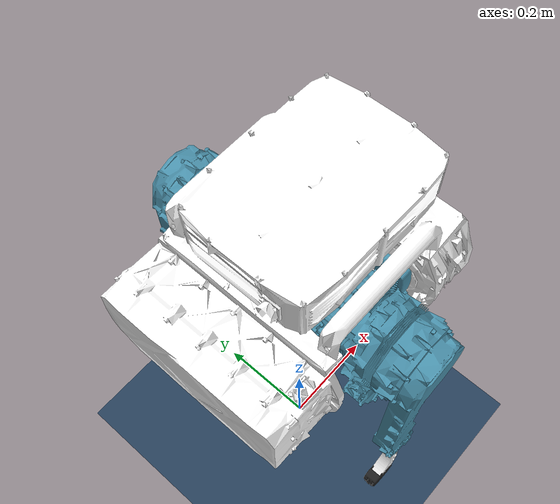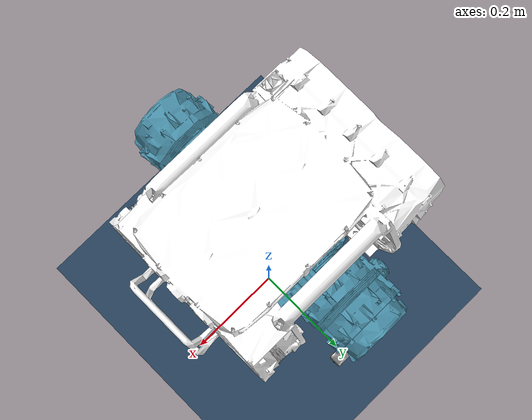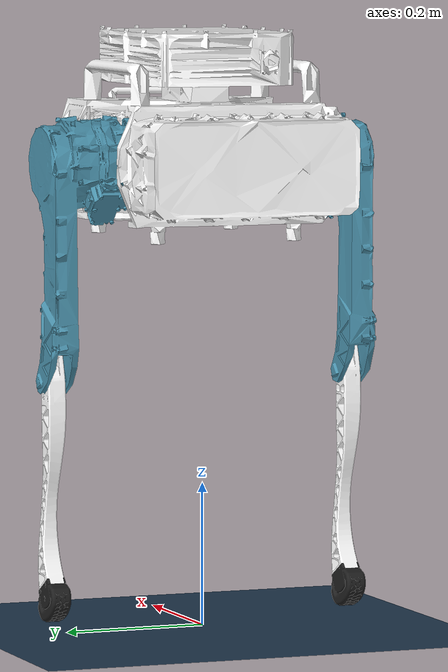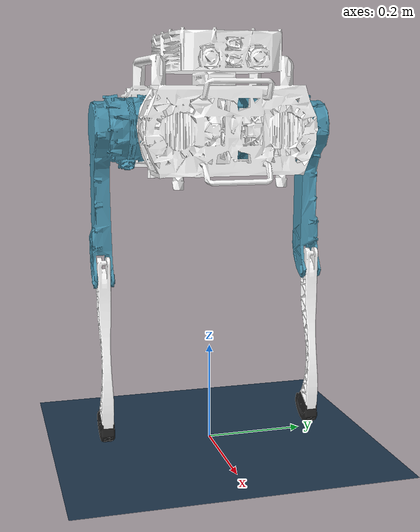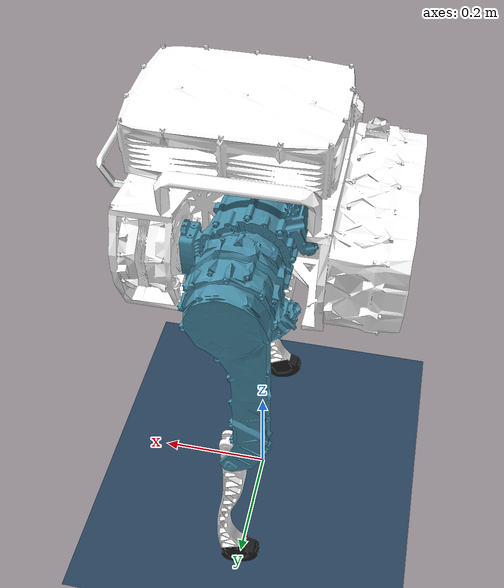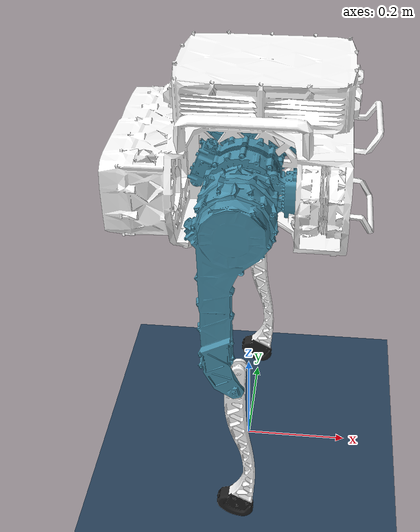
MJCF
<?xml version="1.0" encoding="UTF-8"?>
<!-- Derived from user-provided rubi.xml: comments and external world include removed; robot parameters unchanged. -->
<mujoco model="RUBI">
  <option iterations="100" timestep="0.002" solver="PGS" gravity="0 0 -9.81" />
  <compiler angle="radian" meshdir="meshes" eulerseq="zyx" autolimits="true" fitaabb="true" />
  <visual>
    <map force="0.01" zfar="30" />
    <scale forcewidth="0.075" contactwidth="0.15" contactheight="0.05" jointlength="0.7" framewidth="0.05" framelength="0.5" />
    <rgba haze="0.15 0.25 0.35 1" />
    <global offwidth="2560" offheight="1440" elevation="-20" azimuth="120" />
  </visual>
  <statistic center="0 0 0.7" />
  <default>
    <joint limited="true" damping="0.01" armature="0.01" frictionloss="0.001" />
    <geom condim="3" contype="1" conaffinity="15" friction="0.9 0.9" solref="0.001 1" />
    <motor ctrllimited="true" />
    <equality solref="0.001 1" />
    <default class="visualgeom">
      <geom group="1" condim="1" contype="0" conaffinity="0" />
    </default>
    <default class="foot">
      <geom group="2" type="sphere" size="0.005" priority="1" friction="0.9 0.9" condim="3" contype="1" conaffinity="15" />
    </default>
    <default class="RMD_X8_90">
      <joint frictionloss="0.359645908223244" damping="0.130617712993805" armature="0.084040769086151" />
    </default>
    <default class="RMD_X12_150">
      <joint frictionloss="0.226537899603487" damping="0.250538652440252" armature="0.087396415395941" />
    </default>
    <default class="RMD_X12_150_diff_hip">
      <joint frictionloss="0.4530757992" damping="0.50107730488" armature="0.17479283079" />
    </default>
    <default class="RMD_X12_150_diff_knee">
      <joint frictionloss="3.39806849405" damping="0.50107730488" armature="0.17479283079" />
    </default>
  </default>
  <asset>
    <texture type="skybox" builtin="gradient" rgb1=".3 .5 .7" rgb2="0 0 0" width="32" height="512" />
    <texture name="grid" type="2d" builtin="checker" width="512" height="512" rgb1=".1 .2 .3" rgb2=".2 .3 .4" />
    <material name="grid" texture="grid" texrepeat="1 1" texuniform="true" reflectance=".2" />
    <material name="box_material" rgba="0.8 0.2 0.2 1" />
  </asset>
  <asset>
    <mesh name="BODY" content_type="model/stl" file="BODY.STL" />
    <mesh name="L_HIP" content_type="model/stl" file="L_HIP.STL" />
    <mesh name="L_THIGH" content_type="model/stl" file="L_THIGH.STL" />
    <mesh name="L_CALF" content_type="model/stl" file="L_CALF.STL" />
    <mesh name="L_TIP" content_type="model/stl" file="L_TIP.STL" />
    <mesh name="R_HIP" content_type="model/stl" file="R_HIP.STL" />
    <mesh name="R_THIGH" content_type="model/stl" file="R_THIGH.STL" />
    <mesh name="R_CALF" content_type="model/stl" file="R_CALF.STL" />
    <mesh name="R_TIP" content_type="model/stl" file="R_TIP.STL" />
  </asset>
  <worldbody>
    <light directional="true" diffuse="0.4 0.4 0.4" specular="0.1 0.1 0.1" pos="0 0 5.0" dir="0 0 -1" castshadow="false" />
    <light directional="true" diffuse="0.6 0.6 0.6" specular="0.2 0.2 0.2" pos="0 0 4" dir="0 0 -1" />
    <geom name="floor" size="0 0 .05" type="plane" material="grid" condim="3" conaffinity="15" />
    <camera name="fixed" pos="0 -3.0 1.5853562319157715" xyaxes="1 0 0 0 0 1" />
    <camera name="track" mode="trackcom" pos="0 -3.0 1.5853562319157715" xyaxes="1 0 0 0 0 1" />
    <body name="BODY" pos="0 0 0.65" quat="1 0 0 0">
      <freejoint name="root" />
      <inertial pos="-0.00972 0.00267 0.03209" mass="17.3057" fullinertia="0.20446 0.37832 0.41100 0.00163 -0.01989 -0.00215" />
      <site name="imu_site" size="0.01" pos="0 0 0" />
      <geom type="mesh" rgba="1.0 1.0 1.0 1" mesh="BODY" class="visualgeom" />
      <geom type="box" rgba="0 0.5 0 0.0" pos="-0.0225 0 0" size="0.192 0.005 0.072" group="1" />
      <geom type="box" rgba="0 0.5 0 0.0" pos="0.128 0 0" size="0.0415 0.140 0.083" group="1" />
      <geom type="cylinder" rgba="0 0.5 0 0.0" pos="0.128 0.1 0" size="0.0645 0.0415" quat="0.707107 0 0.707107 0" group="1" />
      <geom type="cylinder" rgba="0 0.5 0 0.0" pos="0.128 -0.1 0" size="0.0645 0.0415" quat="0.707107 0 0.707107 0" group="1" />
      <geom type="cylinder" rgba="0 0.5 0 0.0" pos="0.2095 0 0.090" size="0.005 0.060" quat="0.707107 0.707107 0 0" group="1" />
      <geom type="cylinder" rgba="0 0.5 0 0.0" pos="0.2095 0 -0.090" size="0.005 0.060" quat="0.707107 0.707107 0 0" group="1" />
      <geom type="box" rgba="0 0.5 0 0.0" pos="-0.1635 0 0" size="0.051 0.1555 0.072" group="1" />
      <geom type="box" rgba="0 0.5 0 0.0" pos="0.0285 0 0.144" size="0.141 0.105 0.036" group="1" />
      <geom type="cylinder" rgba="0 0.5 0 0.0" pos="0.0055 0.125 0.124" size="0.012 0.098" quat="0.707107 0 0.707107 0" group="1" />
      <geom type="cylinder" rgba="0 0.5 0 0.0" pos="0.0055 -0.125 0.124" size="0.012 0.098" quat="0.707107 0 0.707107 0" group="1" />
      <geom type="cylinder" rgba="0 0.5 0 0.0" pos="0.1495 0.100 -0.095" size="0.010 0.012" group="1" />
      <geom type="cylinder" rgba="0 0.5 0 0.0" pos="0.1495 -0.100 -0.095" size="0.010 0.012" group="1" />
      <geom type="cylinder" rgba="0 0.5 0 0.0" pos="-0.0925 0.100 -0.095" size="0.010 0.012" group="1" />
      <geom type="cylinder" rgba="0 0.5 0 0.0" pos="-0.0925 -0.100 -0.095" size="0.010 0.012" group="1" />
      <body name="L_HIP" pos="0 0.1 0">
        <inertial pos="0.01294 -0.02861 0.00121" mass="2.02025" fullinertia="0.00226 0.00509 0.00481 -0.00101 0.00018 0.00003" />
        <joint name="L_HR_JOINT" class="RMD_X8_90" pos="0 0 0" axis="1 0 0" range="-0.436 0.436" />
        <geom type="mesh" rgba="0.286 0.565 0.667 1" mesh="L_HIP" class="visualgeom" />
        <geom type="cylinder" rgba="0 0.5 0 0.0" pos="0 -0.0375 0" quat="0.707107 0.707107 0 0" size="0.0645 0.0375" />
        <body name="L_THIGH" pos="0 0.1195 0">
          <inertial pos="-0.00523 -0.04759 -0.02798" mass="3.21815" fullinertia="0.02296 0.02060 0.00717 0.00052 -0.00171 0.00399" />
          <joint name="L_HP_JOINT" class="RMD_X8_90" pos="0 0 0" axis="0 1 0" range="-0.959 2.356" />
          <geom type="mesh" rgba="0.286 0.565 0.667 1" mesh="L_THIGH" class="visualgeom" />
          <geom type="cylinder" rgba="0 0.5 0 0.0" pos="0 -0.02825 0" size="0.0585 0.04575" quat="0.707107 0.707107 0 0" group="1" />
          <geom type="box" rgba="0 0.5 0 0.0" pos="-0.0295 0 -0.165" size="0.029 0.0195 0.080" group="1" />
          <geom type="cylinder" rgba="0 0.5 0 0.0" pos="0 0.017 -0.3" size="0.0165 0.0025" quat="0.707107 0.707107 0 0" group="1" />
          <geom type="cylinder" rgba="0 0.5 0 0.0" pos="0 -0.017 -0.3" size="0.0165 0.0025" quat="0.707107 0.707107 0 0" group="1" />
          <body name="L_CALF" pos="0 0 -0.3">
            <inertial pos="0.00652 0.00010 -0.12271" mass="0.3577" fullinertia="0.00462 0.00466 0.00007 0 0.00020 0" />
            <joint name="L_KN_JOINT" class="RMD_X8_90" pos="0 0 0" axis="0 1 0" range="-2.967 -0.436" />
            <geom type="mesh" rgba="1.0 1.0 1.0 1" mesh="L_CALF" class="visualgeom" />
            <geom type="cylinder" rgba="0 0.5 0 0.0" pos="0 0 0" size="0.0165 0.0125" quat="0.707107 0.707107 0 0" group="1" />
            <geom type="cylinder" rgba="0 0.5 0 0.0" pos="0.0062 0 0.0354" size="0.012 0.0125" quat="0.707107 0.707107 0 0" group="1" />
            <geom type="box" rgba="0 0.5 0 0.0" pos="0 0 -0.160" size="0.015 0.0125 0.100" group="1" />
            <body name="L_TIP" pos="0 0 -0.3">
              <inertial pos="-0.00255 0 -0.00440" mass="0.09008" fullinertia="0.000025 0.000043 0.000031 0 0.000005 0" />
              <geom type="mesh" rgba="0.11764 0.11764 0.11764 1" mesh="L_TIP" class="foot" />
              <geom type="sphere" rgba="0 0.5 0 0.0" size="0.032" group="1" />
            </body>
          </body>
        </body>
      </body>
      <body name="R_HIP" pos="0 -0.1 0">
        <inertial pos="0.01294 0.02861 0.00120" mass="2.02025" fullinertia="0.00227 0.00509 0.00480 0.00101 0.00018 0" />
        <joint name="R_HR_JOINT" class="RMD_X8_90" pos="0 0 0" axis="1 0 0" range="-0.436 0.436" />
        <geom type="mesh" rgba="0.286 0.565 0.667 1" mesh="R_HIP" class="visualgeom" />
        <geom type="cylinder" rgba="0 0.5 0 0.0" pos="0 0.0375 0" size="0.0645 0.0375" quat="0.707107 0.707107 0 0" group="1" />
        <body name="R_THIGH" pos="0 -0.1195 0">
          <inertial pos="-0.00523 0.04759 -0.02798" mass="3.21815" fullinertia="0.02296 0.02060 0.00718 -0.00052 -0.00171 -0.00399" />
          <joint name="R_HP_JOINT" class="RMD_X8_90" pos="0 0 0" axis="0 1 0" range="-0.959 2.356" />
          <geom type="mesh" rgba="0.286 0.565 0.667 1" mesh="R_THIGH" class="visualgeom" />
          <geom type="cylinder" rgba="0 0.5 0 0.0" pos="0 0.02825 0" size="0.0585 0.04575" quat="0.707107 0.707107 0 0" group="1" />
          <geom type="box" rgba="0 0.5 0 0.0" pos="-0.0295 0 -0.165" size="0.029 0.0195 0.080" group="1" />
          <geom type="cylinder" rgba="0 0.5 0 0.0" pos="0 -0.017 -0.3" size="0.0165 0.0025" quat="0.707107 0.707107 0 0" group="1" />
          <geom type="cylinder" rgba="0 0.5 0 0.0" pos="0 0.017 -0.3" size="0.0165 0.0025" quat="0.707107 0.707107 0 0" group="1" />
          <body name="R_CALF" pos="0 0 -0.3">
            <inertial pos="0.00652 -0.00010 -0.12271" mass="0.3577" fullinertia="0.00462 0.00466 0.00007 0 0.00020 0" />
            <joint name="R_KN_JOINT" class="RMD_X8_90" pos="0 0 0" axis="0 1 0" range="-2.967 -0.436" />
            <geom type="mesh" rgba="1.0 1.0 1.0 1" mesh="R_CALF" class="visualgeom" />
            <geom type="cylinder" rgba="0 0.5 0 0.0" pos="0 0 0" size="0.0165 0.0125" quat="0.707107 0.707107 0 0" group="1" />
            <geom type="cylinder" rgba="0 0.5 0 0.0" pos="0.0062 0 0.0354" size="0.012 0.0125" quat="0.707107 0.707107 0 0" group="1" />
            <geom type="box" rgba="0 0.5 0 0.0" pos="0 0 -0.160" size="0.015 0.0125 0.100" group="1" />
            <body name="R_TIP" pos="0 0 -0.3">
              <inertial pos="-0.00255 0 -0.00440" mass="0.09008" fullinertia="0.000025 0.000043 0.000031 0 0.000005 0" />
              <geom type="mesh" rgba="0.11764 0.11764 0.11764 1" mesh="R_TIP" class="foot" />
              <geom type="sphere" rgba="0 0.5 0 0.0" size="0.032" group="1" />
            </body>
          </body>
        </body>
      </body>
      <site name="body_world_Connect" pos="0 0 0" size="0.001" />
    </body>
    <site name="world_body_Connect" pos="0 0 0.57" size="0.001" />
  </worldbody>
  <equality>
    <weld site1="world_body_Connect" site2="body_world_Connect" />
  </equality>
  <actuator>
    <motor name="L_HR_motor" joint="L_HR_JOINT" ctrllimited="true" ctrlrange="-90 90" gear="1" />
    <motor name="L_HP_motor" joint="L_HP_JOINT" ctrllimited="true" ctrlrange="-90 90" gear="1" />
    <motor name="L_KN_motor" joint="L_KN_JOINT" ctrllimited="true" ctrlrange="-90 90" gear="1" />
    <motor name="R_HR_motor" joint="R_HR_JOINT" ctrllimited="true" ctrlrange="-90 90" gear="1" />
    <motor name="R_HP_motor" joint="R_HP_JOINT" ctrllimited="true" ctrlrange="-90 90" gear="1" />
    <motor name="R_KN_motor" joint="R_KN_JOINT" ctrllimited="true" ctrlrange="-90 90" gear="1" />
  </actuator>
  <sensor>
    <framequat name="orientation" objtype="site" objname="imu_site" />
    <gyro name="angular_velocity" site="imu_site" />
    <framequat name="imu_quat" objtype="site" objname="imu_site" />
    <actuatorpos name="L_HR_p" actuator="L_HR_motor" />
    <actuatorvel name="L_HR_v" actuator="L_HR_motor" />
    <actuatorfrc name="L_HR_f" actuator="L_HR_motor" />
    <actuatorpos name="L_HP_p" actuator="L_HP_motor" />
    <actuatorvel name="L_HP_v" actuator="L_HP_motor" />
    <actuatorfrc name="L_HP_f" actuator="L_HP_motor" />
    <actuatorpos name="L_KN_p" actuator="L_KN_motor" />
    <actuatorvel name="L_KN_v" actuator="L_KN_motor" />
    <actuatorfrc name="L_KN_f" actuator="L_KN_motor" />
    <actuatorpos name="R_HR_p" actuator="R_HR_motor" />
    <actuatorvel name="R_HR_v" actuator="R_HR_motor" />
    <actuatorfrc name="R_HR_f" actuator="R_HR_motor" />
    <actuatorpos name="R_HP_p" actuator="R_HP_motor" />
    <actuatorvel name="R_HP_v" actuator="R_HP_motor" />
    <actuatorfrc name="R_HP_f" actuator="R_HP_motor" />
    <actuatorpos name="R_KN_p" actuator="R_KN_motor" />
    <actuatorvel name="R_KN_v" actuator="R_KN_motor" />
    <actuatorfrc name="R_KN_f" actuator="R_KN_motor" />
  </sensor>
</mujoco>
